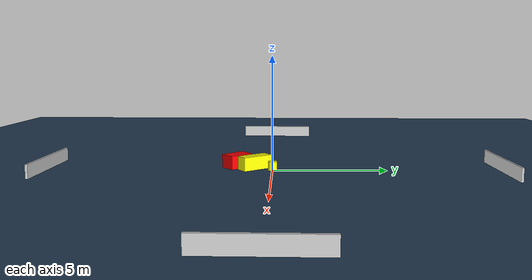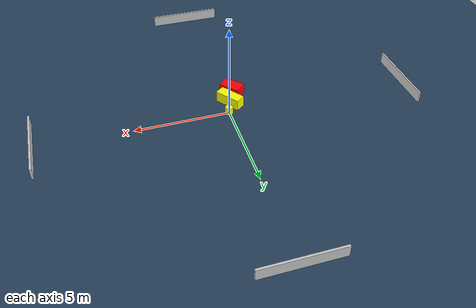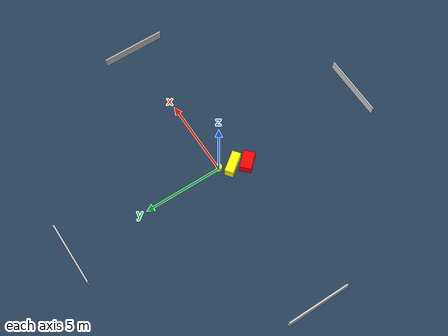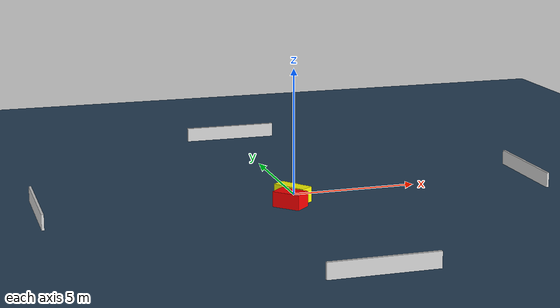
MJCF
<?xml version="1.0" ?>
<mujoco model="generated_environment">
  <option timestep="0.01" integrator="RK4" cone="elliptic"/>
  <default>
    <geom density="1"/>
  </default>
  <asset>
    <texture builtin="gradient" height="3072" name="skybox" rgb1="0.3 0.5 0.7" rgb2="0 0 0" type="skybox" width="512"/>
    <texture builtin="checker" height="300" name="groundplane" rgb1="0.2 0.3 0.4" rgb2="0.1 0.2 0.3" type="2d" width="300"/>
    <material name="groundplane" reflectance="0.2" texrepeat="5 5" texture="groundplane"/>
  </asset>
  <worldbody>
    <light dir="0 0 -1" directional="true" pos="0 0 1.5"/>
    <geom condim="3" friction="0.5 0.005 0.001" material="groundplane" name="floor" pos="0 0 0" size="0 0 0.05" type="plane"/>
    <body name="walls">
      <geom name="wall_1" condim="4" pos="-10.0 0.0 0.3" rgba="0.800000011920929 0.800000011920929 0.800000011920929 1.0" size="0.05 2.0 0.3" type="box"/>
      <geom name="wall_2" condim="4" pos="10.0 0.0 0.3" rgba="0.800000011920929 0.800000011920929 0.800000011920929 1.0" size="0.05 2.0 0.3" type="box"/>
      <geom name="wall_3" condim="4" pos="0.0 -10.0 0.3" rgba="0.800000011920929 0.800000011920929 0.800000011920929 1.0" size="2.0 0.05 0.3" type="box"/>
      <geom name="wall_4" condim="4" pos="0.0 10.0 0.3" rgba="0.800000011920929 0.800000011920929 0.800000011920929 1.0" size="2.0 0.05 0.3" type="box"/>
    </body>
    <body name="robot">
      <joint name="joint_x" type="slide" pos="0 0 0" axis="1 0 0"/>
      <joint name="joint_y" type="slide" pos="0 0 0" axis="0 1 0"/>
      <geom name="robot" type="cylinder" pos="0.0 0.0 0.2" size="0.2 0.2 0.0" mass="5.0" friction="1.0 0.005 0.0001" condim="4" rgba="1.0 1.0 0.0 1.0"/>
    </body>
    <body name="obstacle_1_movable">
      <geom name="obstacle_1_movable" condim="4" pos="-0.2920868096047168 -0.8021593797258741 0.3" euler="0 0 306.56821388059154" friction="0.0 0.005 0.001" rgba="1.0 1.0 0.0 1.0" size="0.6987282704558606 0.2748424812857491 0.3" type="box" mass="0.1"/>
      <joint type="free"/>
    </body>
    <body name="obstacle_2_static">
      <geom name="obstacle_2_static" condim="4" pos="-0.643047934786228 -1.619322691247705 0.3" euler="0 0 133.19457617780193" friction="0.0 0.005 0.001" rgba="1.0 0.0 0.0 1.0" size="0.5688315870021198 0.3587398775783084 0.3" type="box"/>
    </body>
  </worldbody>
  <actuator>
    <motor name="actuator_x" joint="joint_x" gear="1" ctrlrange="-1 1"/>
    <motor name="actuator_y" joint="joint_y" gear="1" ctrlrange="-1 1"/>
  </actuator>
</mujoco>
